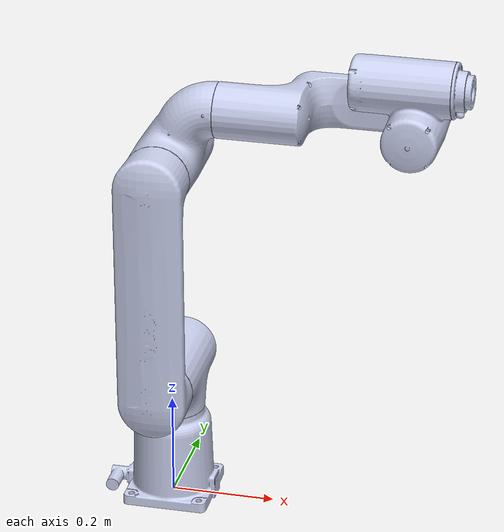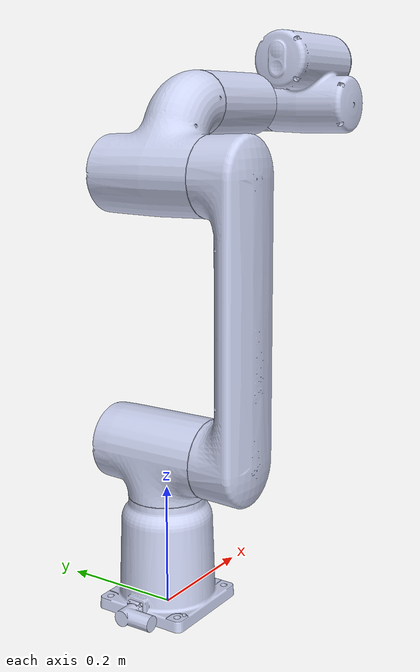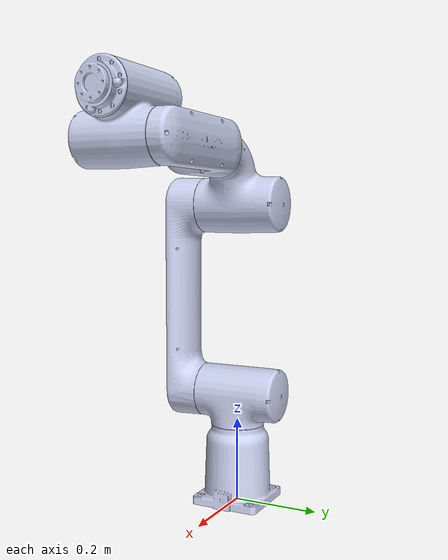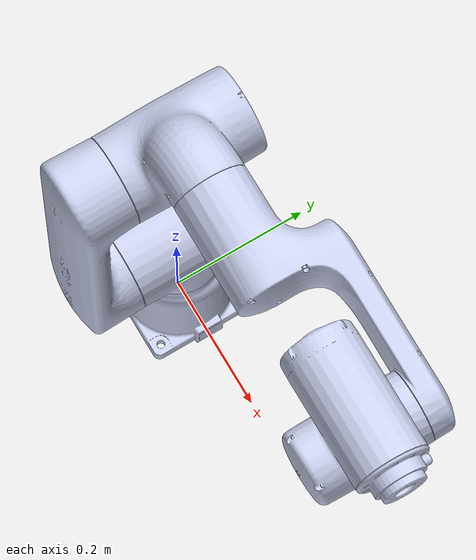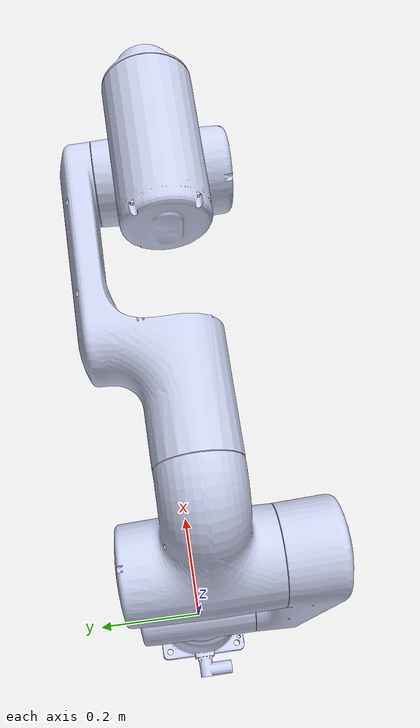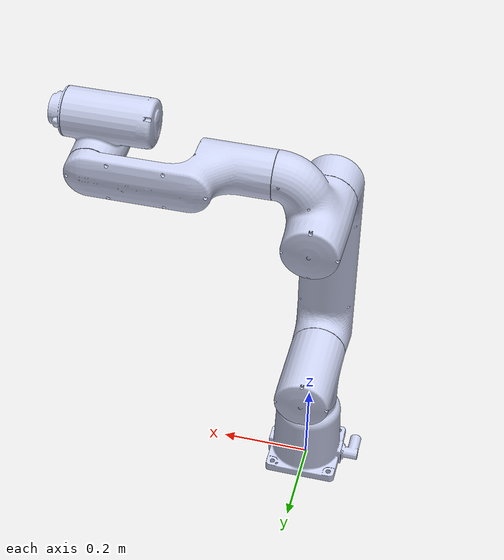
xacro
<?xml version="1.0"?>
<robot xmlns:xacro="http://wiki.ros.org/xacro" name="robot">

  <!-- Parameters -->
  <arg name="name" default="gofa" />
  <xacro:arg name="hardware_interface" default="VelocityJointInterface" />
  <xacro:arg name="gripper_interface" default="" />
  <xacro:arg name="base_translation" default="0" />
  <xacro:arg name="base_orientation" default="0" />
  <xacro:arg name="child" default="flange" />

  <xacro:property name="hardware_interface" value="$(arg hardware_interface)" />
  <xacro:property name="child" value="$(arg child)" />

  <!-- World fixed joint -->
  <link name="world" />
  <!-- Import Rviz colors -->
  <xacro:include filename="$(find robots_description)/Util/materials.xacro" />
  <!-- Import utilities -->
  <xacro:include filename="$(find robots_description)/Util/utilities.xacro" />
  <!--Import the gofa macro -->
  <xacro:include filename="$(find robots_description)/xacro/Gofa/gofa.urdf.xacro" />

  <xacro:gofa parent="world" hardware_interface="${hardware_interface}" child="${child}">
    <origin xyz="0 0 $(arg base_translation)" rpy="0 0 $(arg base_orientation)" />
  </xacro:gofa>

  <!-- Loading Gazebo plugins -->
  <gazebo>
    <plugin name="ros_control" filename="libgazebo_ros_control.so">
    </plugin>
  </gazebo>

  <gazebo reference="L1">
    <gravity>0</gravity>
  </gazebo>

  <gazebo reference="L2">
    <gravity>0</gravity>
  </gazebo>

  <gazebo reference="L3">
    <gravity>0</gravity>
  </gazebo>

  <gazebo reference="L4">
    <gravity>0</gravity>
  </gazebo>

  <gazebo reference="L5">
    <gravity>0</gravity>
  </gazebo>

  <gazebo reference="L6">
    <gravity>0</gravity>
  </gazebo>

</robot>

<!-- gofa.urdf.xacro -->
<robot xmlns:xacro="http://www.ros.org/wiki/xacro" name="gofa">

	<!-- Import Transmissions -->
	<xacro:include filename="$(find robots_description)/xacro/Gofa/gofa.transmission.xacro" />

	<!-- GoFa color -->
	<material name="gofa_color">
		<color rgba="0.792156862745098 0.819607843137255 0.933333333333333 1"/>
	</material>

	<xacro:property name="joint_damping" value="0.5" />
	<xacro:property name="max_effort" value="300" />

	<!-- VC macro -->
	<xacro:macro name="VC" params="suffix">
		<origin xyz="0 0 0" rpy="0 0 0"/>
		<geometry>
			<mesh filename="package://robots_description/meshes/Gofa/${suffix}.STL"/>
		</geometry>
	</xacro:macro>

	<!-- visual and collision macro -->
	<xacro:macro name="visual_plus_collision" params="v_p_c_name">
		<visual>
			<xacro:VC suffix="${v_p_c_name}"/>
			<material name="gofa_color"/>
		</visual>
		<collision>
			<xacro:VC suffix="${v_p_c_name}"/>
		</collision>
	</xacro:macro>

	<!-- Internal link names -->
	<xacro:arg name="base_link_name" 	default="base"/>
	<xacro:arg name="1st_link_name" 	default="L1"/>
	<xacro:arg name="2nd_link_name" 	default="L2"/>
	<xacro:arg name="3rd_link_name" 	default="L3"/>
	<xacro:arg name="4th_link_name" 	default="L4"/>
	<xacro:arg name="5th_link_name" 	default="L5"/>
	<xacro:arg name="6th_link_name" 	default="L6"/>

	<!-- GoFa URDF model -->
	<xacro:macro name="gofa" params="parent hardware_interface child *origin">
		<!-- Base -->
		<joint name="${parent}_to_$(arg base_link_name)" type="fixed">
			<xacro:insert_block name="origin"/>
			<parent link="${parent}"/>
			<child link="$(arg base_link_name)"/>
		</joint>
		<link name="$(arg base_link_name)">
			<inertial>
				<origin xyz="-0.0012013793465437 -0.000175191786981708 0.0862146007385352" rpy="0 0 0"/>
				<mass value="3.50083457958494"/>
				<inertia ixx="0.0153015257917955" ixy="-6.40155032892694E-05" ixz="-0.000276708687772683"
						 iyy="0.0159333503953857" iyz="-3.98029144780725E-05" izz="0.0112162302268266"/>
			</inertial>
			<xacro:visual_plus_collision v_p_c_name="$(arg base_link_name)"/>
		</link>

		<!-- Link 1 -->
		<link name="$(arg 1st_link_name)">
			<inertial>
				<origin xyz="2.08682453325091E-06 0.0103608399967513 0.0705307203199506" rpy="0 0 0"/>
				<mass value="2.76743491139404"/>
				<inertia ixx="0.0115158625894577" ixy="6.37197693598838E-08" ixz="5.98954393680154E-09"
						 iyy="0.006494848329231" iyz="-0.000196668400316843" izz="0.0109446835358581"/>
			</inertial>
			<xacro:visual_plus_collision v_p_c_name="$(arg 1st_link_name)"/>
		</link>
		<joint name="J1" type="revolute">
			<origin xyz="0 0 0.1875" rpy="0 0 0"/>
			<parent link="$(arg base_link_name)"/>
			<child link="$(arg 1st_link_name)"/>
			<axis xyz="0 0 1"/>
			<limit effort="${max_effort}" lower="${radians(-180)}" upper="${radians(180)}" velocity="${radians(125)}"/>
			<dynamics damping="${joint_damping}" />
		</joint>

		<!-- Link2 -->
		<link name="$(arg 2nd_link_name)">
			<inertial>
				<origin xyz="1.34018352211628E-06 -0.0500118376116071 0.222001399322246" rpy="0 0 0"/>
				<mass value="4.28904168670464"/>
				<inertia ixx="0.130524729873898" ixy="1.31811857134115E-07" ixz="1.99022457670482E-06"
						 iyy="0.133278449324229" iyz="-4.48622200366709E-07" izz="0.00669457974697178"/>
			</inertial>
			<xacro:visual_plus_collision v_p_c_name="$(arg 2nd_link_name)"/>
		</link>
		<joint name="J2" type="revolute">
			<origin xyz="0 -0.085 0.0775" rpy="0 0 0"/>
			<parent link="$(arg 1st_link_name)"/>
			<child link="$(arg 2nd_link_name)"/>
			<axis xyz="0 1 0"/>
			<limit effort="${max_effort}" lower="${radians(-180)}" upper="${radians(180)}" velocity="${radians(125)}"/>
			<dynamics damping="${joint_damping}" />
		</joint>

		<!-- Link3 -->
		<link name="$(arg 3rd_link_name)">
			<inertial>
				<origin xyz="0.0128129281453599 0.0944171780907046 0.0247427540642403" rpy="0 0 0"/>
				<mass value="3.38333107992875"/>
				<inertia ixx="0.0175626138728642" ixy="0.000364866179108744" ixz="-0.00318670290285352"
						 iyy="0.0140230068919562" iyz="0.000704668055158407" izz="0.013275205067567"/>
			</inertial>
			<xacro:visual_plus_collision v_p_c_name="$(arg 3rd_link_name)"/>
		</link>
		<joint name="J3" type="revolute">
			<origin xyz="0 -0.00100000000000007 0.444" rpy="0 0 0"/>
			<parent link="$(arg 2nd_link_name)"/>
			<child link="$(arg 3rd_link_name)"/>
			<axis xyz="0 1 0"/>
			<limit effort="${max_effort}" lower="${radians(-225)}" upper="${radians(85)}" velocity="${radians(140)}"/>
			<dynamics damping="${joint_damping}" />
		</joint>

		<!-- Link4 -->
		<link name="$(arg 4th_link_name)">
			<inertial>
				<origin xyz="0.160558561602322 0.041976811408979 -2.36623354021859E-07" rpy="0 0 0"/>
				<mass value="2.77857535641324"/>
				<inertia ixx="0.00881683095901354" ixy="-0.010746260580237" ixz="1.2899930119841E-07"
						 iyy="0.0340754175571832" iyz="3.96362791626429E-08" izz="0.0389358932156922"/>
			</inertial>
			<xacro:visual_plus_collision v_p_c_name="$(arg 4th_link_name)"/>
		</link>
		<joint name="J4" type="revolute">
			<origin xyz="0.096 0.0860000000000001 0.11" rpy="0 0 0"/>
			<parent link="$(arg 3rd_link_name)"/>
			<child link="$(arg 4th_link_name)"/>
			<axis xyz="1 0 0"/>
			<limit effort="${max_effort}" lower="${radians(-180)}" upper="${radians(180)}" velocity="${radians(200)}"/>
			<dynamics damping="${joint_damping}" />
		</joint>

		<!-- Link5 -->
		<link name="$(arg 5th_link_name)">
			<inertial>
				<origin xyz="-0.0147152361879962 -0.0785646469392633 0.0427558021601431" rpy="0 0 0"/>
				<mass value="3.01105814739001"/>
				<inertia ixx="0.0114597336686444" ixy="0.000180094704361231" ixz="0.00165207280226761"
						 iyy="0.013561904467501" iyz="-0.000525272443978826" izz="0.0108480119549914"/>
			</inertial>
			<xacro:visual_plus_collision v_p_c_name="$(arg 5th_link_name)"/>
		</link>
		<joint name="J5" type="revolute">
			<origin xyz="0.374 0.0744999999999998 0" rpy="0 0 0"/>
			<parent link="$(arg 4th_link_name)"/>
			<child link="$(arg 5th_link_name)"/>
			<axis xyz="0 1 0"/>
			<limit effort="${max_effort}" lower="${radians(-180)}" upper="${radians(180)}" velocity="${radians(200)}"/>
			<dynamics damping="${joint_damping}" />
		</joint>

		<!-- Link6 -->
		<link name="$(arg 6th_link_name)">
			<inertial>
				<origin xyz="0.0137506852604966 0.000239804131398652 -0.000341962798940165" rpy="0 0 0"/>
				<mass value="0.146500988015653"/>
				<inertia ixx="0.000128977630055306" ixy="-8.7622752508613E-08" ixz="1.18851551870012E-07"
						 iyy="7.61118177829087E-05" iyz="-6.49821554399679E-07" izz="7.65022909768016E-05"/>
			</inertial>
			<xacro:visual_plus_collision v_p_c_name="$(arg 6th_link_name)"/>
		</link>
		<joint name="J6" type="revolute">
			<origin xyz="0.0679999999999995 -0.0744999999999998 0.0800000000000003" rpy="0 0 0"/>
			<parent link="$(arg 5th_link_name)"/>
			<child link="$(arg 6th_link_name)"/>
			<axis xyz="1 0 0"/>
			<limit effort="${max_effort}" lower="${radians(-270)}" upper="${radians(270)}" velocity="${radians(200)}"/>
			<dynamics damping="${joint_damping}" />
		</joint>

		<!-- Flange -->
		<link name="${child}">
		</link>
		<joint name="$(arg 6th_link_name)_to_${child}" type="fixed">
			<origin xyz="0.033599981 0 0" rpy="0 ${radians(90)} 0"/>
			<parent link="$(arg 6th_link_name)"/>
			<child link="${child}"/>
		</joint>

		<!--Extensions -->
		<xacro:gofa_transmission name="gofa" hardware_interface="${hardware_interface}"/>

	</xacro:macro>

</robot>
